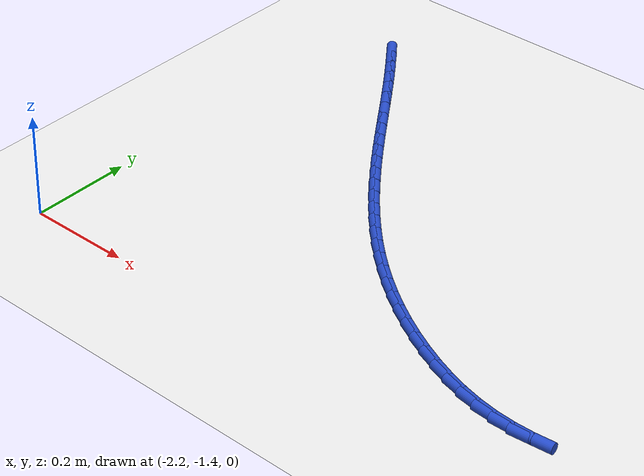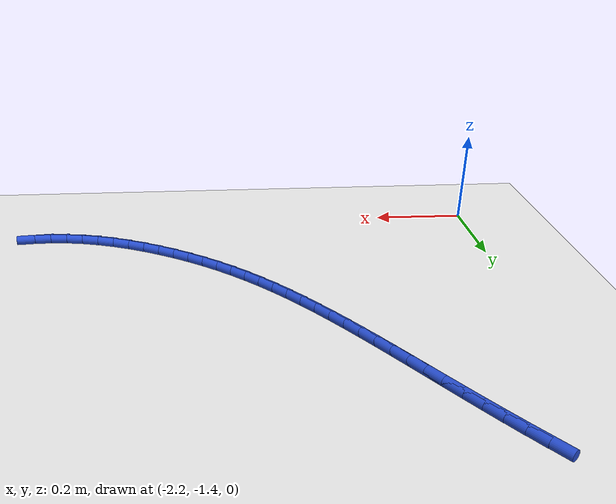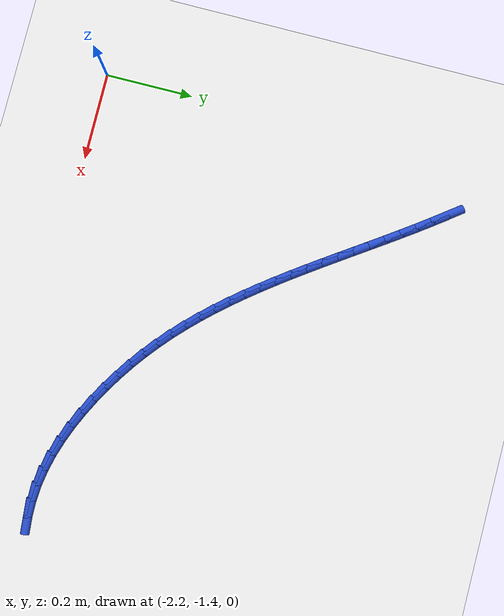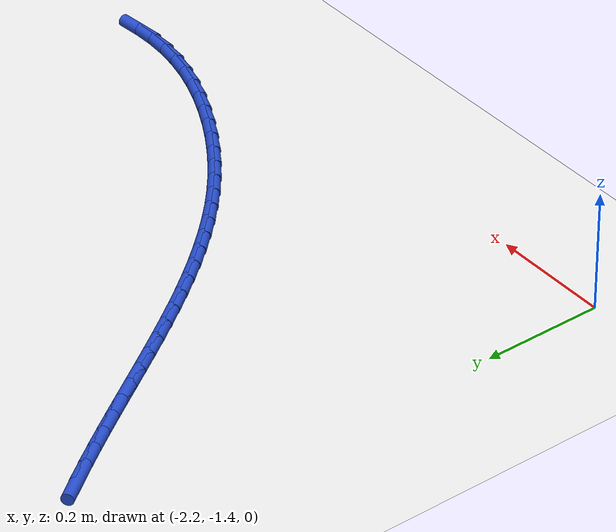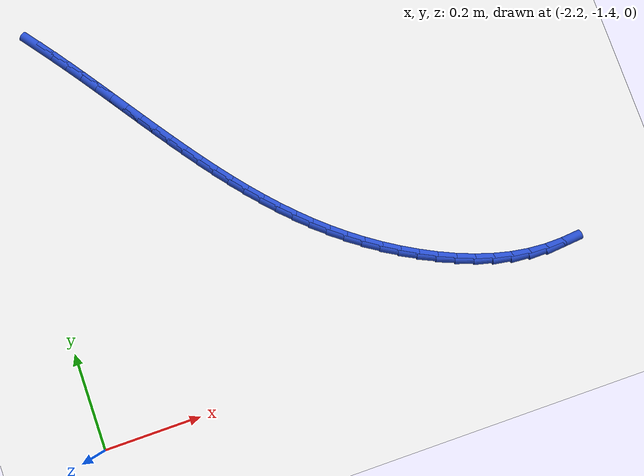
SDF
<sdf version="1.6">
 <world name="default">
  <model name="ground_plane">
   <static>1</static>
   <link name="link">
    <collision name="collision">
     <geometry><plane><normal>0 0 1</normal><size>100 100</size></plane></geometry>
     <surface><friction><ode><mu>100</mu><mu2>50</mu2></ode></friction></surface>
    </collision>
    <visual name="visual">
     <cast_shadows>0</cast_shadows>
     <geometry><plane><normal>0 0 1</normal><size>100 100</size></plane></geometry>
     <material>
      <script><uri>file://media/materials/scripts/gazebo.material</uri><name>Gazebo/WhiteGlow</name></script>
     </material>
    </visual>
   </link>
  </model>
  <model name="line">
   <link name="link_117">
    <pose>-2.0771638382880084 -0.5735663374120754 0.01 0 1.57 -0.9245189255183371</pose>
    <collision name="collision">
     <geometry><cylinder><radius>0.01</radius><length>0.08</length></cylinder></geometry>
    </collision>
    <visual name="visual">
     <material>
      <script><name>Gazebo/Blue</name><uri>file://media/materials/scripts/gazebo.material</uri></script>
     </material>
     <geometry><cylinder><radius>0.01</radius><length>0.08</length></cylinder></geometry>
    </visual>
   </link>
   <link name="link_118">
    <pose>-2.054619562435119 -0.6034521529140444 0.01 0 1.57 -0.9378753532553976</pose>
    <collision name="collision">
     <geometry><cylinder><radius>0.01</radius><length>0.08</length></cylinder></geometry>
    </collision>
    <visual name="visual">
     <material>
      <script><name>Gazebo/Blue</name><uri>file://media/materials/scripts/gazebo.material</uri></script>
     </material>
     <geometry><cylinder><radius>0.01</radius><length>0.08</length></cylinder></geometry>
    </visual>
   </link>
   <link name="link_119">
    <pose>-2.0324211619837733 -0.633711774810515 0.01 0 1.57 -0.9494790472110848</pose>
    <collision name="collision">
     <geometry><cylinder><radius>0.01</radius><length>0.08</length></cylinder></geometry>
    </collision>
    <visual name="visual">
     <material>
      <script><name>Gazebo/Blue</name><uri>file://media/materials/scripts/gazebo.material</uri></script>
     </material>
     <geometry><cylinder><radius>0.01</radius><length>0.08</length></cylinder></geometry>
    </visual>
   </link>
   <link name="link_120">
    <pose>-2.010525936323298 -0.664295990445421 0.01 0 1.57 -0.9580413310417463</pose>
    <collision name="collision">
     <geometry><cylinder><radius>0.01</radius><length>0.08</length></cylinder></geometry>
    </collision>
    <visual name="visual">
     <material>
      <script><name>Gazebo/Blue</name><uri>file://media/materials/scripts/gazebo.material</uri></script>
     </material>
     <geometry><cylinder><radius>0.01</radius><length>0.08</length></cylinder></geometry>
    </visual>
   </link>
   <link name="link_121">
    <pose>-1.9888543895149484 -0.6951220177743811 0.01 0 1.57 -0.9635917628102859</pose>
    <collision name="collision">
     <geometry><cylinder><radius>0.01</radius><length>0.08</length></cylinder></geometry>
    </collision>
    <visual name="visual">
     <material>
      <script><name>Gazebo/Blue</name><uri>file://media/materials/scripts/gazebo.material</uri></script>
     </material>
     <geometry><cylinder><radius>0.01</radius><length>0.08</length></cylinder></geometry>
    </visual>
   </link>
   <link name="link_122">
    <pose>-1.9673270256199789 -0.7261070747530146 0.01 0 1.57 -0.9661511207751791</pose>
    <collision name="collision">
     <geometry><cylinder><radius>0.01</radius><length>0.08</length></cylinder></geometry>
    </collision>
    <visual name="visual">
     <material>
      <script><name>Gazebo/Blue</name><uri>file://media/materials/scripts/gazebo.material</uri></script>
     </material>
     <geometry><cylinder><radius>0.01</radius><length>0.08</length></cylinder></geometry>
    </visual>
   </link>
   <link name="link_123">
    <pose>-1.9458643486996459 -0.7571683793369409 0.01 0 1.57 -0.9657300723929703</pose>
    <collision name="collision">
     <geometry><cylinder><radius>0.01</radius><length>0.08</length></cylinder></geometry>
    </collision>
    <visual name="visual">
     <material>
      <script><name>Gazebo/Blue</name><uri>file://media/materials/scripts/gazebo.material</uri></script>
     </material>
     <geometry><cylinder><radius>0.01</radius><length>0.08</length></cylinder></geometry>
    </visual>
   </link>
   <link name="link_124">
    <pose>-1.9243868628152043 -0.788223149481779 0.01 0 1.57 -0.9623285845220794</pose>
    <collision name="collision">
     <geometry><cylinder><radius>0.01</radius><length>0.08</length></cylinder></geometry>
    </collision>
    <visual name="visual">
     <material>
      <script><name>Gazebo/Blue</name><uri>file://media/materials/scripts/gazebo.material</uri></script>
     </material>
     <geometry><cylinder><radius>0.01</radius><length>0.08</length></cylinder></geometry>
    </visual>
   </link>
   <link name="link_125">
    <pose>-1.9028150720279107 -0.8191886031431485 0.01 0 1.57 -0.9559360401575824</pose>
    <collision name="collision">
     <geometry><cylinder><radius>0.01</radius><length>0.08</length></cylinder></geometry>
    </collision>
    <visual name="visual">
     <material>
      <script><name>Gazebo/Blue</name><uri>file://media/materials/scripts/gazebo.material</uri></script>
     </material>
     <geometry><cylinder><radius>0.01</radius><length>0.08</length></cylinder></geometry>
    </visual>
   </link>
   <link name="link_126">
    <pose>-1.8810694803990176 -0.8499819582766678 0.01 0 1.57 -0.9465320645492464</pose>
    <collision name="collision">
     <geometry><cylinder><radius>0.01</radius><length>0.08</length></cylinder></geometry>
    </collision>
    <visual name="visual">
     <material>
      <script><name>Gazebo/Blue</name><uri>file://media/materials/scripts/gazebo.material</uri></script>
     </material>
     <geometry><cylinder><radius>0.01</radius><length>0.08</length></cylinder></geometry>
    </visual>
   </link>
   <link name="link_127">
    <pose>-1.859070591989782 -0.8805204328379566 0.01 0 1.57 -0.9340881003593662</pose>
    <collision name="collision">
     <geometry><cylinder><radius>0.01</radius><length>0.08</length></cylinder></geometry>
    </collision>
    <visual name="visual">
     <material>
      <script><name>Gazebo/Blue</name><uri>file://media/materials/scripts/gazebo.material</uri></script>
     </material>
     <geometry><cylinder><radius>0.01</radius><length>0.08</length></cylinder></geometry>
    </visual>
   </link>
   <link name="link_128">
    <pose>-1.83673891086146 -0.9107212447826343 0.01 0 1.57 -0.9185698039218408</pose>
    <collision name="collision">
     <geometry><cylinder><radius>0.01</radius><length>0.08</length></cylinder></geometry>
    </collision>
    <visual name="visual">
     <material>
      <script><name>Gazebo/Blue</name><uri>file://media/materials/scripts/gazebo.material</uri></script>
     </material>
     <geometry><cylinder><radius>0.01</radius><length>0.08</length></cylinder></geometry>
    </visual>
   </link>
   <link name="link_129">
    <pose>-1.813994941075306 -0.9405016120663197 0.01 0 1.57 -0.8999403580094271</pose>
    <collision name="collision">
     <geometry><cylinder><radius>0.01</radius><length>0.08</length></cylinder></geometry>
    </collision>
    <visual name="visual">
     <material>
      <script><name>Gazebo/Blue</name><uri>file://media/materials/scripts/gazebo.material</uri></script>
     </material>
     <geometry><cylinder><radius>0.01</radius><length>0.08</length></cylinder></geometry>
    </visual>
   </link>
   <link name="link_130">
    <pose>-1.7907591866925756 -0.9697787526446321 0.01 0 1.57 -0.8781648044478743</pose>
    <collision name="collision">
     <geometry><cylinder><radius>0.01</radius><length>0.08</length></cylinder></geometry>
    </collision>
    <visual name="visual">
     <material>
      <script><name>Gazebo/Blue</name><uri>file://media/materials/scripts/gazebo.material</uri></script>
     </material>
     <geometry><cylinder><radius>0.01</radius><length>0.08</length></cylinder></geometry>
    </visual>
   </link>
   <link name="link_131">
    <pose>-1.7669521517745241 -0.998469884473191 0.01 0 1.57 -0.8532154839085307</pose>
    <collision name="collision">
     <geometry><cylinder><radius>0.01</radius><length>0.08</length></cylinder></geometry>
    </collision>
    <visual name="visual">
     <material>
      <script><name>Gazebo/Blue</name><uri>file://media/materials/scripts/gazebo.material</uri></script>
     </material>
     <geometry><cylinder><radius>0.01</radius><length>0.08</length></cylinder></geometry>
    </visual>
   </link>
   <link name="link_132">
    <pose>-1.7424943403824067 -1.026492225507615 0.01 0 1.57 -0.8250786197518774</pose>
    <collision name="collision">
     <geometry><cylinder><radius>0.01</radius><length>0.08</length></cylinder></geometry>
    </collision>
    <visual name="visual">
     <material>
      <script><name>Gazebo/Blue</name><uri>file://media/materials/scripts/gazebo.material</uri></script>
     </material>
     <geometry><cylinder><radius>0.01</radius><length>0.08</length></cylinder></geometry>
    </visual>
   </link>
   <link name="link_133">
    <pose>-1.7173062565774782 -1.053762993703524 0.01 0 1.57 -0.7937619866769995</pose>
    <collision name="collision">
     <geometry><cylinder><radius>0.01</radius><length>0.08</length></cylinder></geometry>
    </collision>
    <visual name="visual">
     <material>
      <script><name>Gazebo/Blue</name><uri>file://media/materials/scripts/gazebo.material</uri></script>
     </material>
     <geometry><cylinder><radius>0.01</radius><length>0.08</length></cylinder></geometry>
    </visual>
   </link>
   <link name="link_134">
    <pose>-1.6913084044209952 -1.0801994070165364 0.01 0 1.57 -0.7593034542692513</pose>
    <collision name="collision">
     <geometry><cylinder><radius>0.01</radius><length>0.08</length></cylinder></geometry>
    </collision>
    <visual name="visual">
     <material>
      <script><name>Gazebo/Blue</name><uri>file://media/materials/scripts/gazebo.material</uri></script>
     </material>
     <geometry><cylinder><radius>0.01</radius><length>0.08</length></cylinder></geometry>
    </visual>
   </link>
   <link name="link_135">
    <pose>-1.6644212879742115 -1.105718683402272 0.01 0 1.57 -0.7217995804977302</pose>
    <collision name="collision">
     <geometry><cylinder><radius>0.01</radius><length>0.08</length></cylinder></geometry>
    </collision>
    <visual name="visual">
     <material>
      <script><name>Gazebo/Blue</name><uri>file://media/materials/scripts/gazebo.material</uri></script>
     </material>
     <geometry><cylinder><radius>0.01</radius><length>0.08</length></cylinder></geometry>
    </visual>
   </link>
   <link name="link_136">
    <pose>-1.636566178200497 -1.1302383343366753 0.01 0 1.57 -0.6821964083221279</pose>
    <collision name="collision">
     <geometry><cylinder><radius>0.01</radius><length>0.08</length></cylinder></geometry>
    </collision>
    <visual name="visual">
     <material>
      <script><name>Gazebo/Blue</name><uri>file://media/materials/scripts/gazebo.material</uri></script>
     </material>
     <geometry><cylinder><radius>0.01</radius><length>0.08</length></cylinder></geometry>
    </visual>
   </link>
   <link name="link_137">
    <pose>-1.607697347085088 -1.1536885019437337 0.01 0 1.57 -0.6416862615707559</pose>
    <collision name="collision">
     <geometry><cylinder><radius>0.01</radius><length>0.08</length></cylinder></geometry>
    </collision>
    <visual name="visual">
     <material>
      <script><name>Gazebo/Blue</name><uri>file://media/materials/scripts/gazebo.material</uri></script>
     </material>
     <geometry><cylinder><radius>0.01</radius><length>0.08</length></cylinder></geometry>
    </visual>
   </link>
   <link name="link_138">
    <pose>-1.577813877201819 -1.1760164789306942 0.01 0 1.57 -0.6003819892310363</pose>
    <collision name="collision">
     <geometry><cylinder><radius>0.01</radius><length>0.08</length></cylinder></geometry>
    </collision>
    <visual name="visual">
     <material>
      <script><name>Gazebo/Blue</name><uri>file://media/materials/scripts/gazebo.material</uri></script>
     </material>
     <geometry><cylinder><radius>0.01</radius><length>0.08</length></cylinder></geometry>
    </visual>
   </link>
   <link name="link_139">
    <pose>-1.5469180494438082 -1.1971707821137223 0.01 0 1.57 -0.5583278133917902</pose>
    <collision name="collision">
     <geometry><cylinder><radius>0.01</radius><length>0.08</length></cylinder></geometry>
    </collision>
    <visual name="visual">
     <material>
      <script><name>Gazebo/Blue</name><uri>file://media/materials/scripts/gazebo.material</uri></script>
     </material>
     <geometry><cylinder><radius>0.01</radius><length>0.08</length></cylinder></geometry>
    </visual>
   </link>
   <link name="link_140">
    <pose>-1.5150121447041727 -1.217099928308983 0.01 0 1.57 -0.5155814080061868</pose>
    <collision name="collision">
     <geometry><cylinder><radius>0.01</radius><length>0.08</length></cylinder></geometry>
    </collision>
    <visual name="visual">
     <material>
      <script><name>Gazebo/Blue</name><uri>file://media/materials/scripts/gazebo.material</uri></script>
     </material>
     <geometry><cylinder><radius>0.01</radius><length>0.08</length></cylinder></geometry>
    </visual>
   </link>
   <link name="link_141">
    <pose>-1.4820984438760318 -1.2357524343326418 0.01 0 1.57 -0.47160597024135387</pose>
    <collision name="collision">
     <geometry><cylinder><radius>0.01</radius><length>0.08</length></cylinder></geometry>
    </collision>
    <visual name="visual">
     <material>
      <script><name>Gazebo/Blue</name><uri>file://media/materials/scripts/gazebo.material</uri></script>
     </material>
     <geometry><cylinder><radius>0.01</radius><length>0.08</length></cylinder></geometry>
    </visual>
   </link>
   <link name="link_142">
    <pose>-1.4482036648549543 -1.253038361713222 0.01 0 1.57 -0.4231621787990818</pose>
    <collision name="collision">
     <geometry><cylinder><radius>0.01</radius><length>0.08</length></cylinder></geometry>
    </collision>
    <visual name="visual">
     <material>
      <script><name>Gazebo/Blue</name><uri>file://media/materials/scripts/gazebo.material</uri></script>
     </material>
     <geometry><cylinder><radius>0.01</radius><length>0.08</length></cylinder></geometry>
    </visual>
   </link>
   <link name="link_143">
    <pose>-1.4134741557348491 -1.2686795159238262 0.01 0 1.57 -0.36846485809100715</pose>
    <collision name="collision">
     <geometry><cylinder><radius>0.01</radius><length>0.08</length></cylinder></geometry>
    </collision>
    <visual name="visual">
     <material>
      <script><name>Gazebo/Blue</name><uri>file://media/materials/scripts/gazebo.material</uri></script>
     </material>
     <geometry><cylinder><radius>0.01</radius><length>0.08</length></cylinder></geometry>
    </visual>
   </link>
   <link name="link_144">
    <pose>-1.3780928147008613 -1.282340185388378 0.01 0 1.57 -0.3064703158978667</pose>
    <collision name="collision">
     <geometry><cylinder><radius>0.01</radius><length>0.08</length></cylinder></geometry>
    </collision>
    <visual name="visual">
     <material>
      <script><name>Gazebo/Blue</name><uri>file://media/materials/scripts/gazebo.material</uri></script>
     </material>
     <geometry><cylinder><radius>0.01</radius><length>0.08</length></cylinder></geometry>
    </visual>
   </link>
   <link name="link_145">
    <pose>-1.3422425490584842 -1.2936846441785652 0.01 0 1.57 -0.23606337394341173</pose>
    <collision name="collision">
     <geometry><cylinder><radius>0.01</radius><length>0.08</length></cylinder></geometry>
    </collision>
    <visual name="visual">
     <material>
      <script><name>Gazebo/Blue</name><uri>file://media/materials/scripts/gazebo.material</uri></script>
     </material>
     <geometry><cylinder><radius>0.01</radius><length>0.08</length></cylinder></geometry>
    </visual>
   </link>
   <link name="link_146">
    <pose>-1.306106266113211 -1.302377166366074 0.01 0 1.57 -0.15614037096284955</pose>
    <collision name="collision">
     <geometry><cylinder><radius>0.01</radius><length>0.08</length></cylinder></geometry>
    </collision>
    <visual name="visual">
     <material>
      <script><name>Gazebo/Blue</name><uri>file://media/materials/scripts/gazebo.material</uri></script>
     </material>
     <geometry><cylinder><radius>0.01</radius><length>0.08</length></cylinder></geometry>
    </visual>
   </link>
   <link name="link_147">
    <pose>-1.2698668701287819 -1.3080820358475043 0.01 0 1.57 -0.06879951280392775</pose>
    <collision name="collision">
     <geometry><cylinder><radius>0.01</radius><length>0.08</length></cylinder></geometry>
    </collision>
    <visual name="visual">
     <material>
      <script><name>Gazebo/Blue</name><uri>file://media/materials/scripts/gazebo.material</uri></script>
     </material>
     <geometry><cylinder><radius>0.01</radius><length>0.08</length></cylinder></geometry>
    </visual>
   </link>
   <link name="link_148">
    <pose>-1.2336724057101052 -1.3105761337732709 0.01 0 1.57 0.015164078829460999</pose>
    <collision name="collision">
     <geometry><cylinder><radius>0.01</radius><length>0.08</length></cylinder></geometry>
    </collision>
    <visual name="visual">
     <material>
      <script><name>Gazebo/Blue</name><uri>file://media/materials/scripts/gazebo.material</uri></script>
     </material>
     <geometry><cylinder><radius>0.01</radius><length>0.08</length></cylinder></geometry>
    </visual>
   </link>
   <link name="link_149">
    <pose>-1.1975495617651128 -1.3100283221298687 0.01 0 1.57 0.09226239252465615</pose>
    <collision name="collision">
     <geometry><cylinder><radius>0.01</radius><length>0.08</length></cylinder></geometry>
    </collision>
    <visual name="visual">
     <material>
      <script><name>Gazebo/Blue</name><uri>file://media/materials/scripts/gazebo.material</uri></script>
     </material>
     <geometry><cylinder><radius>0.01</radius><length>0.08</length></cylinder></geometry>
    </visual>
   </link>
  </model>
 </world>
</sdf>
